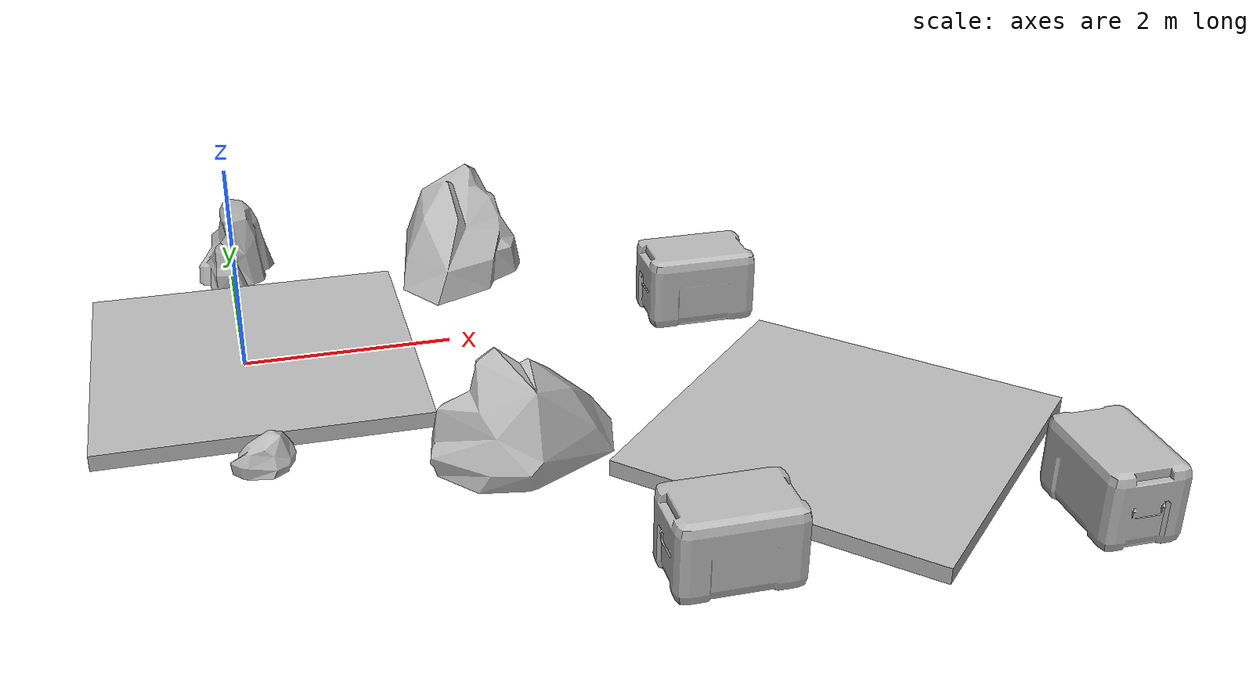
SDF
<sdf version="1.6">
 <world name="SRC_finals">
  <physics type="ode">
   <real_time_update_rate>1000.0</real_time_update_rate>
   <max_step_size>0.001</max_step_size>
   <real_time_factor>1</real_time_factor>
   <ode>
    <solver>
     <type>quick</type>
     <iters>150</iters>
     <precon_iters>0</precon_iters>
     <sor>1.400000</sor>
     <use_dynamic_moi_rescaling>1</use_dynamic_moi_rescaling>
    </solver>
    <constraints>
     <cfm>0.000000</cfm>
     <erp>0.800000</erp>
     <contact_max_correcting_vel>2000.000000</contact_max_correcting_vel>
     <contact_surface_layer>0.01000</contact_surface_layer>
    </constraints>
   </ode>
  </physics>
  <scene>
   <background>0.968627451 0.690196078 0.384313725 1.0</background>
   <grid>0</grid>
   <origin_visual>0</origin_visual>
  </scene>
  <light type="directional" name="sun">
   <pose>0 0 1000 0.13354950705196278 -1.5478276144208802 0</pose>
   <diffuse>0.8 0.8 0.8 1</diffuse>
   <specular>0.2 0.2 0.2 1</specular>
   <attenuation>
    <range>1000</range>
    <constant>0.9</constant>
    <linear>0.01</linear>
    <quadratic>0.001</quadratic>
   </attenuation>
   <direction>-0.5 0.1 -0.9</direction>
  </light>
  <include>
   <name>walkway_1</name>
   <pose>0.09
      0
      -0.052151
      0
      0
      3.141592653589793</pose>
   <uri>model://walkway_finish_opposite</uri>
  </include>
  <include>
   <name>mars_rock_2_1</name>
   <pose>0.0900000000000003
      2.024
      0
      0
      0
      -2.4492935982947064e-16</pose>
   <uri>model://mars_rock_2</uri>
  </include>
  <include>
   <name>mars_rock_1_2</name>
   <pose>0.08999999999999976
      -1.924
      0
      0
      0
      3.141592653589793</pose>
   <uri>model://mars_rock_1</uri>
  </include>
  <plugin name="boxT1Start" filename="libBoxContainsPlugin.so">
   <entity>valkyrie</entity>
   <namespace>task1/start</namespace>
   <pose>2.114
        -2.784846821261081e-16
        2.5
        0
        0
        -1.5707963267948968</pose>
   <size>1.524 1 5.0</size>
  </plugin>
  <plugin name="boxT1CP1" filename="libBoxContainsPlugin.so">
   <entity>valkyrie</entity>
   <namespace>task1/checkpoint1</namespace>
   <pose>2.687517287525381
        0.3267572875253808
        2.5
        0
        0
        0.7853981633974481</pose>
   <size>1 1 5.0</size>
  </plugin>
  <include>
   <name>mars_rock_3_3</name>
   <pose>2.376000000000001
      1.8619999999999997
      0
      0
      0
      -2.4492935982947064e-16</pose>
   <uri>model://mars_rock_3</uri>
  </include>
  <include>
   <name>mars_crate_long_4</name>
   <pose>4.558050159477537
      0.026215332949237502
      0
      0
      0
      -2.220446049250313e-16</pose>
   <uri>model://mars_crate_long</uri>
  </include>
  <include>
   <name>mars_rock_3_5</name>
   <pose>2.1369165406947976
      -2.394918285833501
      0
      0
      0
      2.356194490192345</pose>
   <uri>model://mars_rock_3</uri>
  </include>
  <include>
   <name>walkway_4</name>
   <pose>5.069995469056597
      -2.6947315610565976
      -0.052151
      0
      0
      0.7853981633974481</pose>
   <uri>model://walkway_finish_adjacent</uri>
  </include>
  <plugin name="boxT1CP3" filename="libBoxContainsPlugin.so">
   <entity>valkyrie</entity>
   <namespace>task1/checkpoint3</namespace>
   <pose>5.069995469056597
        -2.6947315610565976
        2.5
        0
        0
        0.7853981633974481</pose>
   <size>3.048 3.048 5.0</size>
  </plugin>
  <include>
   <name>mars_crate_long_6</name>
   <pose>6.713311628534133
      -4.338047720534135
      0
      0
      0
      -1.570796326794897</pose>
   <uri>model://mars_crate_long</uri>
  </include>
  <include>
   <name>mars_crate_long_7</name>
   <pose>3.4266793095790598
      -4.338047720534134
      0
      0
      0
      3.141592653589793</pose>
   <uri>model://mars_crate_long</uri>
  </include>
  <plugin name="finals" filename="libFinalsPlugin.so">
   <task1>
    <timeout>1800</timeout>
    <checkpoint1>
     <skip_robot_pose>2.687517287525381
              0.3267572875253808
              1.1
              0
              0
              0.7853981633974481</skip_robot_pose>
    </checkpoint1>
    <checkpoint2>
     <skip_robot_pose>2.687517287525381
              0.3267572875253808
              1.1
              0
              0
              0.7853981633974481</skip_robot_pose>
    </checkpoint2>
    <checkpoint3>
     <skip_robot_pose>5.069995469056597
              -2.6947315610565976
              1.1
              0
              0
              0.7853981633974481</skip_robot_pose>
    </checkpoint3>
   </task1>
  </plugin>
 </world>
</sdf>

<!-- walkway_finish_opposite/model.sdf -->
<sdf version="1.5">
  <model name="walkway_finish_opposite">
    <static>true</static>
    <link name="link">
      <collision name="collision">
        <pose>0 0 0.076075 0 0 0</pose>
        <geometry>
          <box>
            <size>3.048 3.048 0.15215</size>
          </box>
        </geometry>
      </collision>

      <visual name="visual">
        <geometry>
          <mesh>
            <scale>0.001 0.001 0.001</scale>
            <uri>model://walkway_finish_opposite/meshes/walkway_finish_opposite.obj</uri>
          </mesh>
        </geometry>
      </visual>
    </link>
  </model>
</sdf>

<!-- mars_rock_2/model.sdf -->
<sdf version="1.5">
  <model name="mars_rock_2">
    <static>true</static>
    <link name="link">
      <collision name="collision">
        <geometry>
          <mesh>
            <uri>model://mars_rock_2/meshes/mars_rock_2.obj</uri>
            <scale>0.03 0.03 0.03</scale>
          </mesh>
        </geometry>
      </collision>
      <visual name="visual">
        <geometry>
          <mesh>
            <uri>model://mars_rock_2/meshes/mars_rock_2.obj</uri>
            <scale>0.03 0.03 0.03</scale>
          </mesh>
        </geometry>
      </visual>
    </link>
  </model>
</sdf>

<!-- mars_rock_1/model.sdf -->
<sdf version="1.5">
  <model name="mars_rock_1">
    <static>true</static>
    <link name="link">
      <collision name="collision">
        <geometry>
          <mesh>
            <uri>model://mars_rock_1/meshes/mars_rock_1.obj</uri>
            <scale>0.03 0.03 0.03</scale>
          </mesh>
        </geometry>
      </collision>
      <visual name="visual">
        <geometry>
          <mesh>
            <uri>model://mars_rock_1/meshes/mars_rock_1.obj</uri>
            <scale>0.03 0.03 0.03</scale>
          </mesh>
        </geometry>
      </visual>
    </link>
  </model>
</sdf>

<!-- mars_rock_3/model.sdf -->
<sdf version="1.5">
  <model name="mars_rock_3">
    <static>true</static>
    <link name="link">
      <collision name="collision">
        <geometry>
          <mesh>
            <uri>model://mars_rock_3/meshes/mars_rock_3.obj</uri>
            <scale>0.03 0.03 0.03</scale>
          </mesh>
        </geometry>
      </collision>
      <visual name="visual">
        <geometry>
          <mesh>
            <uri>model://mars_rock_3/meshes/mars_rock_3.obj</uri>
            <scale>0.03 0.03 0.03</scale>
          </mesh>
        </geometry>
      </visual>
    </link>
  </model>
</sdf>

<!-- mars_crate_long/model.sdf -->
<sdf version="1.5">
  <model name="mars_crate_long">
    <static>true</static>
    <link name="link">
      <collision name="collision">
        <geometry>
          <mesh>
            <uri>model://mars_crate_long/meshes/crate_long.obj</uri>
            <scale>0.03 0.03 0.03</scale>
          </mesh>
        </geometry>
      </collision>
      <visual name="visual">
        <geometry>
          <mesh>
            <uri>model://mars_crate_long/meshes/crate_long.obj</uri>
            <scale>0.03 0.03 0.03</scale>
          </mesh>
        </geometry>
      </visual>
    </link>
  </model>
</sdf>

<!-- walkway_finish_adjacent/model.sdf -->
<sdf version="1.5">
  <model name="walkway_finish_adjacent">
    <static>true</static>
    <link name="link">
      <collision name="collision">
        <pose>0 0 0.076075 0 0 0</pose>
        <geometry>
          <box>
            <size>3.048 3.048 0.15215</size>
          </box>
        </geometry>
      </collision>

      <visual name="visual">
        <geometry>
          <mesh>
            <scale>0.001 0.001 0.001</scale>
            <uri>model://walkway_finish_adjacent/meshes/walkway_finish_adjacent.obj</uri>
          </mesh>
        </geometry>
      </visual>
    </link>
  </model>
</sdf>
